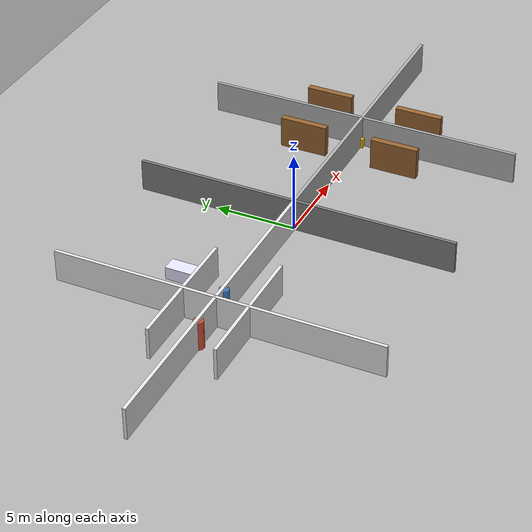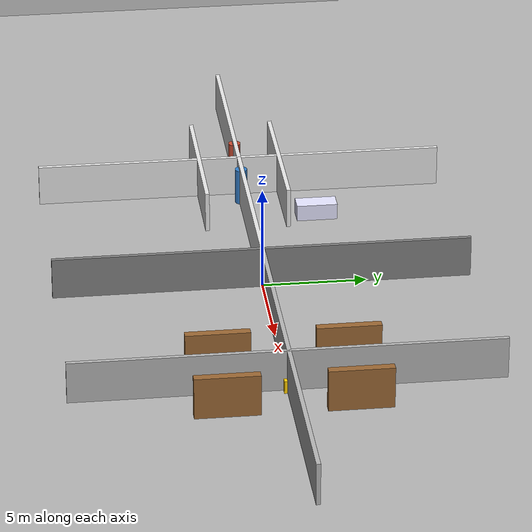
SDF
<?xml version="1.0" ?>
<sdf version="1.9">
  <world name="dynamic">

    <plugin filename="gz-sim-physics-system" name="gz::sim::systems::Physics"/>
    <plugin filename="gz-sim-sensors-system" name="gz::sim::systems::Sensors">
      <render_engine>ogre2</render_engine>
    </plugin>
    <plugin filename="gz-sim-imu-system" name="gz::sim::systems::Imu"/>
    <plugin filename="gz-sim-scene-broadcaster-system" name="gz::sim::systems::SceneBroadcaster"/>
    <plugin filename="gz-sim-user-commands-system" name="gz::sim::systems::UserCommands"/>

    <light name="sun" type="directional">
      <cast_shadows>true</cast_shadows>
      <pose>0 0 10 0 0 0</pose>
      <diffuse>1 1 1 1</diffuse>
      <ambient>0.8 0.8 0.8 1</ambient>
      <specular>0.5 0.5 0.5 1</specular>
      <direction>-0.5 0.1 -0.9</direction>
    </light>

    <!-- Sol -->
    <model name="ground_plane">
      <static>true</static>
      <link name="link">
        <collision name="collision">
          <geometry><plane><normal>0 0 1</normal></plane></geometry>
        </collision>
        <visual name="visual">
          <geometry><plane><normal>0 0 1</normal><size>100 100</size></plane></geometry>
          <material><ambient>0.7 0.7 0.7 1</ambient></material>
        </visual>
      </link>
    </model>

    <!-- === ZONE HÔPITAL (côté gauche x < 0) === -->
    <model name="hospital_wall_north">
      <static>true</static>
      <pose>-5 0 1 0 0 1.5707</pose>
      <link name="link">
        <collision name="col"><geometry><box><size>0.2 10 2</size></box></geometry></collision>
        <visual name="vis">
          <geometry><box><size>0.2 10 2</size></box></geometry>
          <material><ambient>0.9 0.9 0.9 1</ambient></material>
        </visual>
      </link>
    </model>

    <model name="hospital_wall_south">
      <static>true</static>
      <pose>-15 0 1 0 0 1.5707</pose>
      <link name="link">
        <collision name="col"><geometry><box><size>0.2 10 2</size></box></geometry></collision>
        <visual name="vis">
          <geometry><box><size>0.2 10 2</size></box></geometry>
          <material><ambient>0.9 0.9 0.9 1</ambient></material>
        </visual>
      </link>
    </model>

    <model name="hospital_wall_east">
      <static>true</static>
      <pose>-10 5 1 0 0 0</pose>
      <link name="link">
        <collision name="col"><geometry><box><size>0.2 10 2</size></box></geometry></collision>
        <visual name="vis">
          <geometry><box><size>0.2 10 2</size></box></geometry>
          <material><ambient>0.9 0.9 0.9 1</ambient></material>
        </visual>
      </link>
    </model>

    <model name="hospital_wall_west">
      <static>true</static>
      <pose>-10 -5 1 0 0 0</pose>
      <link name="link">
        <collision name="col"><geometry><box><size>0.2 10 2</size></box></geometry></collision>
        <visual name="vis">
          <geometry><box><size>0.2 10 2</size></box></geometry>
          <material><ambient>0.9 0.9 0.9 1</ambient></material>
        </visual>
      </link>
    </model>

    <!-- Couloir hôpital -->
    <model name="hosp_corridor_1">
      <static>true</static>
      <pose>-10 2 1 0 0 0</pose>
      <link name="link">
        <collision name="col"><geometry><box><size>8 0.2 2</size></box></geometry></collision>
        <visual name="vis">
          <geometry><box><size>8 0.2 2</size></box></geometry>
          <material><ambient>0.9 0.9 0.9 1</ambient></material>
        </visual>
      </link>
    </model>

    <model name="hosp_corridor_2">
      <static>true</static>
      <pose>-10 -2 1 0 0 0</pose>
      <link name="link">
        <collision name="col"><geometry><box><size>8 0.2 2</size></box></geometry></collision>
        <visual name="vis">
          <geometry><box><size>8 0.2 2</size></box></geometry>
          <material><ambient>0.9 0.9 0.9 1</ambient></material>
        </visual>
      </link>
    </model>

    <!-- Humains hôpital -->
    <model name="human_1">
      <pose>-9 0 0.9 0 0 0</pose>
      <link name="link">
        <collision name="col">
          <geometry><cylinder><radius>0.3</radius><length>1.8</length></cylinder></geometry>
        </collision>
        <visual name="vis">
          <geometry><cylinder><radius>0.3</radius><length>1.8</length></cylinder></geometry>
          <material><ambient>0.2 0.5 0.8 1</ambient></material>
        </visual>
        <inertial>
          <mass>70</mass>
          <inertia><ixx>1</ixx><iyy>1</iyy><izz>0.5</izz></inertia>
        </inertial>
      </link>
    </model>

    <model name="human_2">
      <pose>-12 0 0.9 0 0 0</pose>
      <link name="link">
        <collision name="col">
          <geometry><cylinder><radius>0.3</radius><length>1.8</length></cylinder></geometry>
        </collision>
        <visual name="vis">
          <geometry><cylinder><radius>0.3</radius><length>1.8</length></cylinder></geometry>
          <material><ambient>0.8 0.3 0.2 1</ambient></material>
        </visual>
        <inertial>
          <mass>70</mass>
          <inertia><ixx>1</ixx><iyy>1</iyy><izz>0.5</izz></inertia>
        </inertial>
      </link>
    </model>

    <!-- Lits hôpital -->
    <model name="hospital_bed_1">
      <static>true</static>
      <pose>-7 3.5 0.4 0 0 0</pose>
      <link name="link">
        <collision name="col"><geometry><box><size>0.9 2.0 0.8</size></box></geometry></collision>
        <visual name="vis">
          <geometry><box><size>0.9 2.0 0.8</size></box></geometry>
          <material><ambient>0.9 0.9 1.0 1</ambient></material>
        </visual>
      </link>
    </model>

    <!-- === ZONE ENTREPÔT (côté droit x > 0) === -->
    <model name="warehouse_wall_north">
      <static>true</static>
      <pose>5 0 1 0 0 1.5707</pose>
      <link name="link">
        <collision name="col"><geometry><box><size>0.2 10 2</size></box></geometry></collision>
        <visual name="vis">
          <geometry><box><size>0.2 10 2</size></box></geometry>
          <material><ambient>0.7 0.7 0.7 1</ambient></material>
        </visual>
      </link>
    </model>

    <model name="warehouse_wall_south">
      <static>true</static>
      <pose>15 0 1 0 0 1.5707</pose>
      <link name="link">
        <collision name="col"><geometry><box><size>0.2 10 2</size></box></geometry></collision>
        <visual name="vis">
          <geometry><box><size>0.2 10 2</size></box></geometry>
          <material><ambient>0.7 0.7 0.7 1</ambient></material>
        </visual>
      </link>
    </model>

    <model name="warehouse_wall_east">
      <static>true</static>
      <pose>10 5 1 0 0 0</pose>
      <link name="link">
        <collision name="col"><geometry><box><size>0.2 10 2</size></box></geometry></collision>
        <visual name="vis">
          <geometry><box><size>0.2 10 2</size></box></geometry>
          <material><ambient>0.7 0.7 0.7 1</ambient></material>
        </visual>
      </link>
    </model>

    <model name="warehouse_wall_west">
      <static>true</static>
      <pose>10 -5 1 0 0 0</pose>
      <link name="link">
        <collision name="col"><geometry><box><size>0.2 10 2</size></box></geometry></collision>
        <visual name="vis">
          <geometry><box><size>0.2 10 2</size></box></geometry>
          <material><ambient>0.7 0.7 0.7 1</ambient></material>
        </visual>
      </link>
    </model>

    <!-- Étagères entrepôt -->
    <model name="shelf_1">
      <static>true</static>
      <pose>8 -3 1 0 0 0</pose>
      <link name="link">
        <collision name="col"><geometry><box><size>0.4 3 2</size></box></geometry></collision>
        <visual name="vis">
          <geometry><box><size>0.4 3 2</size></box></geometry>
          <material><ambient>0.6 0.4 0.2 1</ambient></material>
        </visual>
      </link>
    </model>

    <model name="shelf_2">
      <static>true</static>
      <pose>8 3 1 0 0 0</pose>
      <link name="link">
        <collision name="col"><geometry><box><size>0.4 3 2</size></box></geometry></collision>
        <visual name="vis">
          <geometry><box><size>0.4 3 2</size></box></geometry>
          <material><ambient>0.6 0.4 0.2 1</ambient></material>
        </visual>
      </link>
    </model>

    <model name="shelf_3">
      <static>true</static>
      <pose>12 -3 1 0 0 0</pose>
      <link name="link">
        <collision name="col"><geometry><box><size>0.4 3 2</size></box></geometry></collision>
        <visual name="vis">
          <geometry><box><size>0.4 3 2</size></box></geometry>
          <material><ambient>0.6 0.4 0.2 1</ambient></material>
        </visual>
      </link>
    </model>

    <model name="shelf_4">
      <static>true</static>
      <pose>12 3 1 0 0 0</pose>
      <link name="link">
        <collision name="col"><geometry><box><size>0.4 3 2</size></box></geometry></collision>
        <visual name="vis">
          <geometry><box><size>0.4 3 2</size></box></geometry>
          <material><ambient>0.6 0.4 0.2 1</ambient></material>
        </visual>
      </link>
    </model>

    <!-- Chariots mobiles entrepôt -->
    <model name="cart_1">
      <pose>10 0 0.3 0 0 0</pose>
      <link name="link">
        <collision name="col"><geometry><box><size>0.8 0.5 0.6</size></box></geometry></collision>
        <visual name="vis">
          <geometry><box><size>0.8 0.5 0.6</size></box></geometry>
          <material><ambient>1.0 0.8 0.0 1</ambient></material>
        </visual>
        <inertial>
          <mass>20</mass>
          <inertia><ixx>1</ixx><iyy>1</iyy><izz>1</izz></inertia>
        </inertial>
      </link>
    </model>

    <!-- Couloir central entre les deux zones -->
    <model name="center_wall_top">
      <static>true</static>
      <pose>0 5 1 0 0 0</pose>
      <link name="link">
        <collision name="col"><geometry><box><size>0.2 10 2</size></box></geometry></collision>
        <visual name="vis">
          <geometry><box><size>0.2 10 2</size></box></geometry>
          <material><ambient>0.5 0.5 0.5 1</ambient></material>
        </visual>
      </link>
    </model>

    <model name="center_wall_bottom">
      <static>true</static>
      <pose>0 -5 1 0 0 0</pose>
      <link name="link">
        <collision name="col"><geometry><box><size>0.2 10 2</size></box></geometry></collision>
        <visual name="vis">
          <geometry><box><size>0.2 10 2</size></box></geometry>
          <material><ambient>0.5 0.5 0.5 1</ambient></material>
        </visual>
      </link>
    </model>

  </world>
</sdf>
